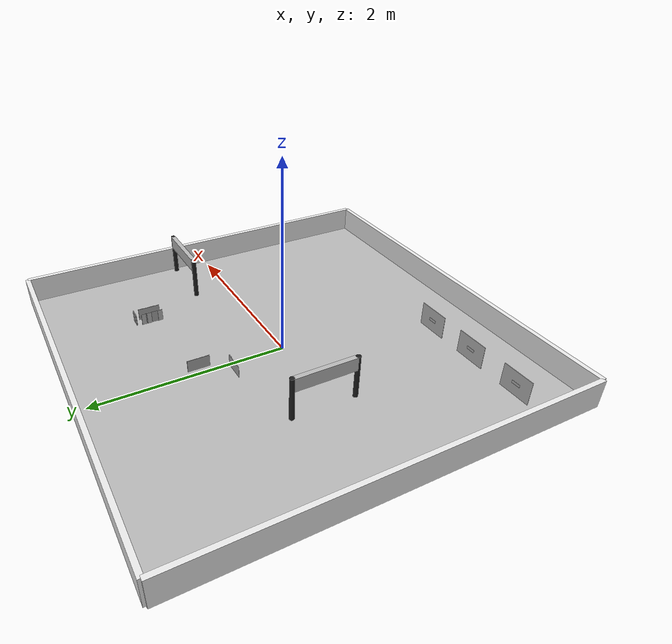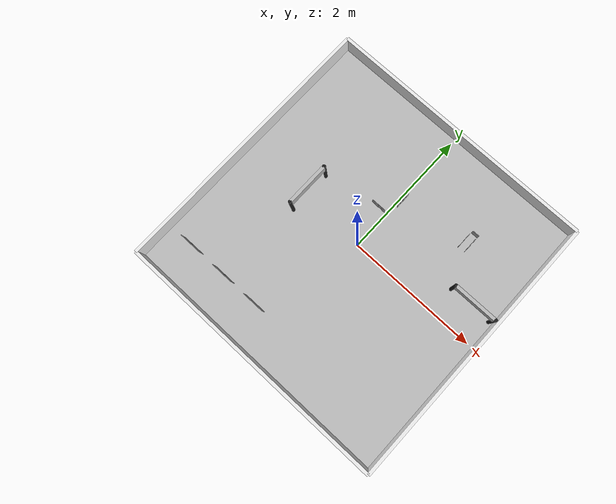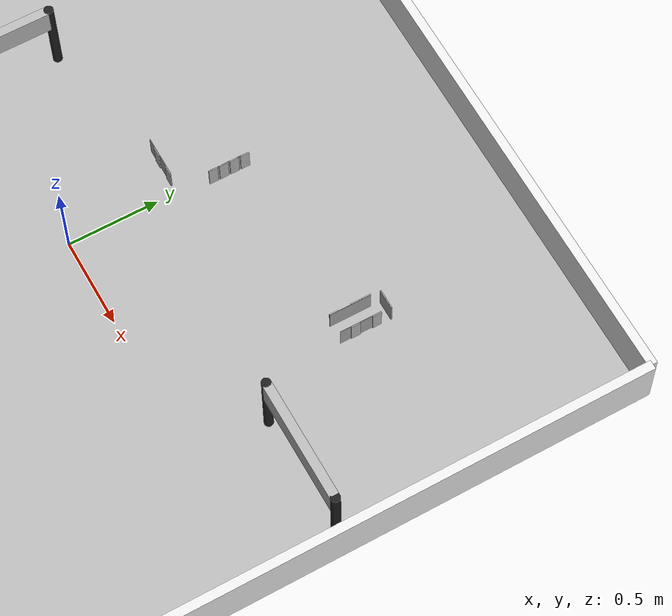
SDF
<sdf version="1.6">
 <world name="smart_community_competition">
  <physics name="default_physics" type="ode">
   <max_step_size>0.001</max_step_size>
   <real_time_factor>1.0</real_time_factor>
   <real_time_update_rate>1000</real_time_update_rate>
  </physics>
  <gravity>0 0 -9.8</gravity>
  <include><uri>model://sun</uri></include>
  <include><uri>model://ground_map</uri><name>ground_map</name></include>
  <include><uri>model://field_frame</uri><name>field_frame</name></include>
  <include>
   <uri>model://vehicle_board</uri>
   <name>vehicle_board1</name>
   <pose>-0.48 -1.53 0.15 0 0 0</pose>
  </include>
  <include>
   <uri>model://vehicle_board</uri>
   <name>vehicle_board2</name>
   <pose>-1.06 -1.53 0.15 0 0 0</pose>
  </include>
  <include>
   <uri>model://vehicle_board</uri>
   <name>vehicle_board3</name>
   <pose>-1.66 -1.53 0.15 0 0 0</pose>
  </include>
  <include>
   <uri>model://traffic_light</uri>
   <name>traffic_light_1</name>
   <pose>1.689 0.408 0 0 0 -3.14</pose>
  </include>
  <include>
   <uri>model://traffic_light</uri>
   <name>traffic_light_2</name>
   <pose>-1.0 0.102 0 0 0 -1.57</pose>
  </include>
  <include><uri>model://car_plate1</uri><name>car_plate1</name><pose>-0.48 -1.526 0.15 0 0 0</pose></include>
  <include><uri>model://car_plate2</uri><name>car_plate2</name><pose>-1.06 -1.526 0.15 0 0 0</pose></include>
  <include><uri>model://car_plate3</uri><name>car_plate3</name><pose>-1.66 -1.526 0.15 0 0 0</pose></include>
  <include><uri>model://cm2</uri><name>cm2</name><pose>1.16 1.00 0.075 0 0 1.57</pose></include>
  <include><uri>model://cm5</uri><name>cm5</name><pose>1.16 1.12 0.075 0 0 1.57</pose></include>
  <include>
   <uri>model://thin_plate_4person</uri>
   <name>thin_plate_group1</name>
   <pose>1.1564 1.03 0 0 0 0</pose>
  </include>
  <include><uri>model://cm6</uri><name>cm6</name><pose>1.048 0.94 0.075 0 0 1.57</pose></include>
  <include><uri>model://cm8</uri><name>cm8</name><pose>1.048 1.06 0.075 0 0 1.57</pose></include>
  <include><uri>model://cm9</uri><name>cm9</name><pose>1.048 1.12 0.075 0 0 1.57</pose></include>
  <include>
   <uri>model://thin_plate_4person</uri>
   <name>thin_plate_group2</name>
   <pose>1.0516 1.03 0 0 0 0</pose>
  </include>
  <include><uri>model://cm10</uri><name>cm10</name><pose>0.05 0.80 0.075 0 0 1.57</pose></include>
  <include><uri>model://cm11</uri><name>cm11</name><pose>0.05 0.86 0.075 0 0 1.57</pose></include>
  <include><uri>model://cm12</uri><name>cm12</name><pose>0.05 0.92 0.075 0 0 1.57</pose></include>
  <include><uri>model://cm13</uri><name>cm13</name><pose>0.05 0.98 0.075 0 0 1.57</pose></include>
  <include>
   <uri>model://thin_plate_4person</uri>
   <name>thin_plate_group3</name>
   <pose>0.0464 0.89 0 0 0 0</pose>
  </include>
  <include><uri>model://ncm2</uri><name>ncm2</name><pose>-0.18 0.60 0.075 0 0 0</pose></include>
  <include><uri>model://cm15</uri><name>cm15</name><pose>-0.06 0.60 0.075 0 0 0</pose></include>
  <include>
   <uri>model://thin_plate_4person</uri>
   <name>thin_plate_group4</name>
   <pose>-0.15 0.6036 0 0 0 1.5708</pose>
  </include>
  <include><uri>model://ncm1</uri><name>ncm1</name><pose>1.08 1.20 0.075 0 0 0</pose></include>
  <include><uri>model://cm1</uri><name>cm1</name><pose>1.14 1.20 0.075 0 0 0</pose></include>
  <include>
   <uri>model://thin_plate_2person</uri>
   <name>thin_plate_group5</name>
   <pose>1.11 1.1964 0 0 0 1.5708</pose>
  </include>
 </world>
</sdf>

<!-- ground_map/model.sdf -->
<sdf version="1.6">
  <model name="ground_map">
    <static>true</static>
    <pose>0 0 -0.025 0 0 0</pose>
    <link name="link">
      <collision name="collision">
        <geometry><box><size>4.2 4.2 0.05</size></box></geometry>
      </collision>
      <visual name="visual">
        <geometry><box><size>4.2 4.2 0.05</size></box></geometry>
        <material>
          <script>
            <uri>model://ground_map/materials/scripts</uri>
            <uri>model://ground_map/materials/textures</uri>
            <name>ground_map</name>
          </script>
        </material>
      </visual>
    </link>
  </model>
</sdf>

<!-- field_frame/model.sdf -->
<sdf version="1.6">
  <model name="field_frame">
    <static>true</static>

    <link name="wall_north">
      <pose>0 2.1 0.15 0 0 0</pose>
      <collision name="collision"><geometry><box><size>4.2 0.05 0.3</size></box></geometry></collision>
      <visual name="visual">
        <geometry><box><size>4.2 0.05 0.3</size></box></geometry>
        <material><script><uri>file://media/materials/scripts/gazebo.material</uri><name>Gazebo/White</name></script></material>
      </visual>
    </link>

    <link name="wall_south">
      <pose>0 -2.1 0.15 0 0 0</pose>
      <collision name="collision"><geometry><box><size>4.2 0.05 0.3</size></box></geometry></collision>
      <visual name="visual">
        <geometry><box><size>4.2 0.05 0.3</size></box></geometry>
        <material><script><uri>file://media/materials/scripts/gazebo.material</uri><name>Gazebo/White</name></script></material>
      </visual>
    </link>

    <link name="wall_east">
      <pose>2.1 0 0.15 0 0 0</pose>
      <collision name="collision"><geometry><box><size>0.05 4.2 0.3</size></box></geometry></collision>
      <visual name="visual">
        <geometry><box><size>0.05 4.2 0.3</size></box></geometry>
        <material><script><uri>file://media/materials/scripts/gazebo.material</uri><name>Gazebo/White</name></script></material>
      </visual>
    </link>

    <link name="wall_west">
      <pose>-2.1 0 0.15 0 0 0</pose>
      <collision name="collision"><geometry><box><size>0.05 4.2 0.3</size></box></geometry></collision>
      <visual name="visual">
        <geometry><box><size>0.05 4.2 0.3</size></box></geometry>
        <material><script><uri>file://media/materials/scripts/gazebo.material</uri><name>Gazebo/White</name></script></material>
      </visual>
    </link>

  </model>
</sdf>

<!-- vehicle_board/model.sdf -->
<sdf version="1.6">
  <model name="vehicle_board">
    <static>true</static>
    <pose>0 0 0.125 0 0 0</pose>
    <link name="board">
      <collision name="collision"><geometry><box><size>0.345 0.005 0.25</size></box></geometry></collision>
      <visual name="visual">
        <geometry><box><size>0.345 0.005 0.25</size></box></geometry>
        <material>
          <script>
            <uri>model://vehicle_board/materials/scripts</uri>
            <uri>model://vehicle_board/materials/textures</uri>
            <name>vehicle_board</name>
          </script>
        </material>
      </visual>
    </link>
  </model>
</sdf>

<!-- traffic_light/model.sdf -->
<sdf version="1.6">
  <model name="traffic_light">
    <static>true</static>

    <link name="panel">
      <pose>0 0 0.41 0 0 0</pose>
      <collision name="collision"><geometry><box><size>0.64 0.05 0.14</size></box></geometry></collision>
      <visual name="visual">
        <geometry><box><size>0.64 0.05 0.14</size></box></geometry>
        <material><script>
            <uri>model://traffic_light/materials/scripts/traffic_light.material</uri>
            <name>traffic_light</name>
          </script></material>
      </visual>
    </link>
    <link name="leg_left">
      <pose>-0.3325 0 0.24 0 0 0</pose>
      <collision name="collision"><geometry><cylinder><radius>0.025</radius><length>0.48</length></cylinder></geometry></collision>
      <visual name="visual">
        <geometry><cylinder><radius>0.025</radius><length>0.48</length></cylinder></geometry>
        <material><script><uri>file://media/materials/scripts/gazebo.material</uri><name>Gazebo/Black</name></script></material>
      </visual>
    </link>
    <link name="leg_right">
      <pose>0.3325 0 0.24 0 0 0</pose>
      <collision name="collision"><geometry><cylinder><radius>0.025</radius><length>0.48</length></cylinder></geometry></collision>
      <visual name="visual">
        <geometry><cylinder><radius>0.025</radius><length>0.48</length></cylinder></geometry>
        <material><script><uri>file://media/materials/scripts/gazebo.material</uri><name>Gazebo/Black</name></script></material>
      </visual>
    </link>
  </model>
</sdf>

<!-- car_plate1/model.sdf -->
<sdf version="1.6">
  <model name="car_plate1">
    <static>true</static>
    <pose>0 0 0.15 0 0 0</pose>
    <link name="car_plate1">
      <collision name="collision"><geometry><box><size>0.095 0.001 0.03</size></box></geometry></collision>
      <visual name="visual">
        <geometry><box><size>0.095 0.001 0.03</size></box></geometry>
        <material><script>
          <uri>model://car_plate1/materials/scripts</uri>
          <uri>model://car_plate1/materials/textures</uri>
          <name>car_plate1</name>
        </script></material>
      </visual>
    </link>
  </model>
</sdf>

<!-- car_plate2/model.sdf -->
<sdf version="1.6">
  <model name="car_plate2">
    <static>true</static>
    <pose>0 0 0.15 0 0 0</pose>

    <link name="car_plate2">
      <collision name="collision">
        <geometry>
          <box>
            <size>0.095 0.001 0.03</size>
          </box>
        </geometry>
      </collision>

      <visual name="visual">
        <geometry>
          <box>
            <size>0.095 0.001 0.03</size>
          </box>
        </geometry>

        <material>
          <script>
            <uri>model://car_plate2/materials/scripts</uri>
            <uri>model://car_plate2/materials/textures</uri>
            <name>car_plate2</name>
          </script>
        </material>
      </visual>
    </link>
  </model>
</sdf>

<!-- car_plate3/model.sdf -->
<sdf version="1.6">
  <model name="car_plate3">
    <static>true</static>
    <pose>0 0 0.15 0 0 0</pose>
    <link name="car_plate3">
      <collision name="collision"><geometry><box><size>0.095 0.001 0.03</size></box></geometry></collision>
      <visual name="visual">
        <geometry><box><size>0.095 0.001 0.03</size></box></geometry>
        <material><script>
          <uri>model://car_plate3/materials/scripts</uri>
          <uri>model://car_plate3/materials/textures</uri>
          <name>car_plate3</name>
        </script></material>
      </visual>
    </link>
  </model>
</sdf>

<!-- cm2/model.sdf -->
<sdf version="1.6">
  <model name="cm2">
    <static>true</static>
    <pose>0 0 0.075 0 0 0</pose>
    <link name="cm2">
      <collision name="collision">
        <geometry>
          <box>
            <size>0.05 0.005 0.15</size>
          </box>
        </geometry>
      </collision>

      <visual name="visual">
        <geometry>
          <box>
            <size>0.05 0.005 0.15</size>
          </box>
        </geometry>

        <material>
          <script>
            <uri>model://cm2/materials/scripts/cm2.material</uri>
            <uri>model://cm2/materials/textures/cm2.png</uri>
            <name>cm2</name>
          </script>
        </material>
      </visual>
    </link>
  </model>
</sdf>

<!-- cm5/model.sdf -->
<sdf version="1.6">
  <model name="cm5">
    <static>true</static>
    <pose>0 0 0.075 0 0 0</pose>
    <link name="cm5">
      <collision name="collision">
        <geometry>
          <box>
            <size>0.05 0.005 0.15</size>
          </box>
        </geometry>
      </collision>

      <visual name="visual">
        <geometry>
          <box>
            <size>0.05 0.005 0.15</size>
          </box>
        </geometry>

        <material>
          <script>
            <uri>model://cm5/materials/scripts/cm5.material</uri>
            <uri>model://cm5/materials/textures/cm5.png</uri>
            <name>cm5</name>
          </script>
        </material>
      </visual>
    </link>
  </model>
</sdf>

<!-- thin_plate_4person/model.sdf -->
<sdf version="1.6">
  <model name="thin_plate_4person">
    <static>true</static>

    <link name="plate_link">
      <pose>0 0 0.075 0 0 0</pose>

      <collision name="plate_collision">
        <geometry>
          <box>
            <size>0.002 0.230 0.150</size>
          </box>
        </geometry>
      </collision>

      <visual name="plate_visual">
        <geometry>
          <box>
            <size>0.002 0.230 0.150</size>
          </box>
        </geometry>

        <material>
          <ambient>0.65 0.65 0.65 1</ambient>
          <diffuse>0.65 0.65 0.65 1</diffuse>
        </material>
      </visual>
    </link>
  </model>
</sdf>

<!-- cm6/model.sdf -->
<sdf version="1.6">
  <model name="cm6">
    <static>true</static>
    <pose>0 0 0.075 0 0 0</pose>
    <link name="cm6">
      <collision name="collision">
        <geometry>
          <box>
            <size>0.05 0.005 0.15</size>
          </box>
        </geometry>
      </collision>

      <visual name="visual">
        <geometry>
          <box>
            <size>0.05 0.005 0.15</size>
          </box>
        </geometry>

        <material>
          <script>
            <uri>model://cm6/materials/scripts/cm6.material</uri>
            <uri>model://cm6/materials/textures/cm6.png</uri>
            <name>cm6</name>
          </script>
        </material>
      </visual>
    </link>
  </model>
</sdf>

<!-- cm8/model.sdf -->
<sdf version="1.6">
  <model name="cm8">
    <static>true</static>
    <pose>0 0 0.075 0 0 0</pose>
    <link name="cm8">
      <collision name="collision">
        <geometry>
          <box>
            <size>0.05 0.005 0.15</size>
          </box>
        </geometry>
      </collision>

      <visual name="visual">
        <geometry>
          <box>
            <size>0.05 0.005 0.15</size>
          </box>
        </geometry>

        <material>
          <script>
            <uri>model://cm8/materials/scripts/cm8.material</uri>
            <uri>model://cm8/materials/textures/cm8.png</uri>
            <name>cm8</name>
          </script>
        </material>
      </visual>
    </link>
  </model>
</sdf>

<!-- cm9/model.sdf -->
<sdf version="1.6">
  <model name="cm9">
    <static>true</static>
    <pose>0 0 0.075 0 0 0</pose>
    <link name="cm9">
      <collision name="collision">
        <geometry>
          <box>
            <size>0.05 0.005 0.15</size>
          </box>
        </geometry>
      </collision>

      <visual name="visual">
        <geometry>
          <box>
            <size>0.05 0.005 0.15</size>
          </box>
        </geometry>

        <material>
          <script>
            <uri>model://cm9/materials/scripts/cm9.material</uri>
            <uri>model://cm9/materials/textures/cm9.png</uri>
            <name>cm9</name>
          </script>
        </material>
      </visual>
    </link>
  </model>
</sdf>

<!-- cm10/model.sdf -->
<sdf version="1.6">
  <model name="cm10">
    <static>true</static>
    <pose>0 0 0.075 0 0 0</pose>
    <link name="cm10">
      <collision name="collision">
        <geometry>
          <box>
            <size>0.05 0.005 0.15</size>
          </box>
        </geometry>
      </collision>

      <visual name="visual">
        <geometry>
          <box>
            <size>0.05 0.005 0.15</size>
          </box>
        </geometry>

        <material>
          <script>
            <uri>model://cm10/materials/scripts/cm10.material</uri>
            <uri>model://cm10/materials/textures/cm10.png</uri>
            <name>cm10</name>
          </script>
        </material>
      </visual>
    </link>
  </model>
</sdf>

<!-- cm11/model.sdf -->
<sdf version="1.6">
  <model name="cm11">
    <static>true</static>
    <pose>0 0 0.075 0 0 0</pose>
    <link name="cm11">
      <collision name="collision">
        <geometry>
          <box>
            <size>0.05 0.005 0.15</size>
          </box>
        </geometry>
      </collision>

      <visual name="visual">
        <geometry>
          <box>
            <size>0.05 0.005 0.15</size>
          </box>
        </geometry>

        <material>
          <script>
            <uri>model://cm11/materials/scripts/cm11.material</uri>
            <uri>model://cm11/materials/textures/cm11.png</uri>
            <name>cm11</name>
          </script>
        </material>
      </visual>
    </link>
  </model>
</sdf>

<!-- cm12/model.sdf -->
<sdf version="1.6">
  <model name="cm12">
    <static>true</static>
    <pose>0 0 0.075 0 0 0</pose>
    <link name="cm12">
      <collision name="collision">
        <geometry>
          <box>
            <size>0.05 0.005 0.15</size>
          </box>
        </geometry>
      </collision>

      <visual name="visual">
        <geometry>
          <box>
            <size>0.05 0.005 0.15</size>
          </box>
        </geometry>

        <material>
          <script>
            <uri>model://cm12/materials/scripts/cm12.material</uri>
            <uri>model://cm12/materials/textures/cm12.png</uri>
            <name>cm12</name>
          </script>
        </material>
      </visual>
    </link>
  </model>
</sdf>

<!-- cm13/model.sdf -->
<sdf version="1.6">
  <model name="cm13">
    <static>true</static>
    <pose>0 0 0.075 0 0 0</pose>
    <link name="cm13">
      <collision name="collision">
        <geometry>
          <box>
            <size>0.05 0.005 0.15</size>
          </box>
        </geometry>
      </collision>

      <visual name="visual">
        <geometry>
          <box>
            <size>0.05 0.005 0.15</size>
          </box>
        </geometry>

        <material>
          <script>
            <uri>model://cm13/materials/scripts/cm13.material</uri>
            <uri>model://cm13/materials/textures/cm13.png</uri>
            <name>cm13</name>
          </script>
        </material>
      </visual>
    </link>
  </model>
</sdf>

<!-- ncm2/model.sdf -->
<sdf version="1.6">
  <model name="ncm2">
    <static>true</static>
    <pose>0 0 0.075 0 0 0</pose>
    <link name="ncm2">
      <collision name="collision">
        <geometry>
          <box>
            <size>0.05 0.005 0.15</size>
          </box>
        </geometry>
      </collision>

      <visual name="visual">
        <geometry>
          <box>
            <size>0.05 0.005 0.15</size>
          </box>
        </geometry>

        <material>
          <script>
            <uri>model://ncm2/materials/scripts/ncm2.material</uri>
            <uri>model://ncm2/materials/textures/ncm2.png</uri>
            <name>ncm2</name>
          </script>
        </material>
      </visual>
    </link>
  </model>
</sdf>

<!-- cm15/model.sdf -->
<sdf version="1.6">
  <model name="cm15">
    <static>true</static>
    <pose>0 0 0.075 0 0 0</pose>
    <link name="cm15">
      <collision name="collision">
        <geometry>
          <box>
            <size>0.05 0.005 0.15</size>
          </box>
        </geometry>
      </collision>

      <visual name="visual">
        <geometry>
          <box>
            <size>0.05 0.005 0.15</size>
          </box>
        </geometry>

        <material>
          <script>
            <uri>model://cm15/materials/scripts/cm15.material</uri>
            <uri>model://cm15/materials/textures/cm15.png</uri>
            <name>cm15</name>
          </script>
        </material>
      </visual>
    </link>
  </model>
</sdf>

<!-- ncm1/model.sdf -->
<sdf version="1.6">
  <model name="ncm1">
    <static>true</static>
    <pose>0 0 0.075 0 0 0</pose>
    <link name="ncm1">
      <collision name="collision">
        <geometry>
          <box>
            <size>0.05 0.005 0.15</size>
          </box>
        </geometry>
      </collision>

      <visual name="visual">
        <geometry>
          <box>
            <size>0.05 0.005 0.15</size>
          </box>
        </geometry>

        <material>
          <script>
            <uri>model://ncm1/materials/scripts/ncm1.material</uri>
            <uri>model://ncm1/materials/textures/ncm1.png</uri>
            <name>ncm1</name>
          </script>
        </material>
      </visual>
    </link>
  </model>
</sdf>

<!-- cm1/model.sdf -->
<sdf version="1.6">
  <model name="cm1">
    <static>true</static>

    <pose>0 0 0.075 0 0 0</pose>

    <link name="cm1">

      <collision name="collision">
        <geometry>
          <box>
            <size>0.05 0.005 0.15</size>
          </box>
        </geometry>
      </collision>

      <visual name="visual">
        <geometry>
          <box>
            <size>0.05 0.005 0.15</size>
          </box>
        </geometry>

        <material>
          <script>
            <uri>model://cm1/materials/scripts/cm1.material</uri>
            <uri>model://cm1/materials/textures/cm1.png</uri>
            <name>cm1</name>
          </script>
        </material>
      </visual>

    </link>
  </model>
</sdf>

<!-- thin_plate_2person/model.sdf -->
<sdf version="1.6">
  <model name="thin_plate_2person">
    <static>true</static>

    <link name="plate_link">
      <pose>0 0 0.075 0 0 0</pose>

      <collision name="plate_collision">
        <geometry>
          <box>
            <size>0.002 0.110 0.150</size>
          </box>
        </geometry>
      </collision>

      <visual name="plate_visual">
        <geometry>
          <box>
            <size>0.002 0.110 0.150</size>
          </box>
        </geometry>

        <material>
          <ambient>0.65 0.65 0.65 1</ambient>
          <diffuse>0.65 0.65 0.65 1</diffuse>
        </material>
      </visual>
    </link>
  </model>
</sdf>
